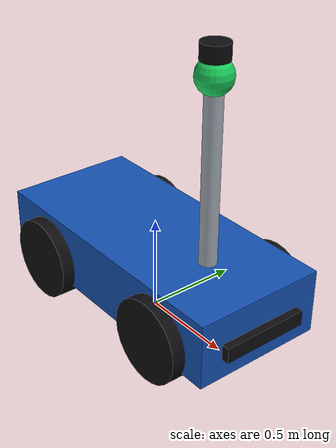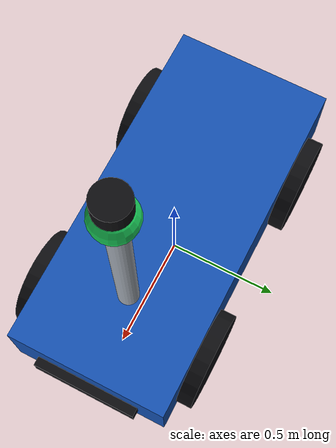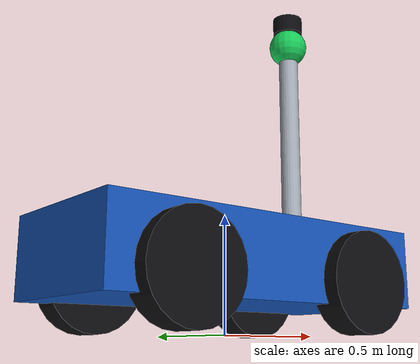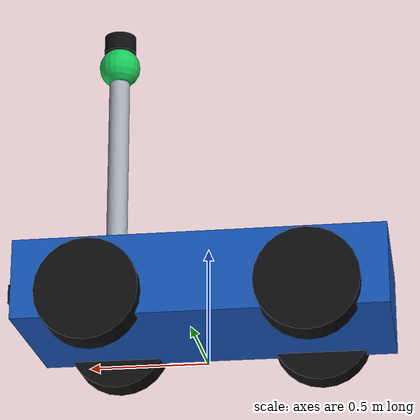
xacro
<?xml version="1.0"?>
<robot xmlns:xacro="http://www.ros.org/wiki/xacro" name="patrol_robot">
  <!-- roboQ-320 dimensions from the vehicle configuration sheet. -->
  <xacro:property name="wheel_radius" value="0.215"/>
  <xacro:property name="wheel_width" value="0.135"/>
  <xacro:property name="wheel_base" value="0.89"/>
  <xacro:property name="track_width" value="0.70"/>
  <xacro:property name="steering_joint_limit" value="${radians(35.0)}"/>
  <!-- Bicycle-model limit atan(wheel_base / minimum_turning_radius). -->
  <xacro:property name="steering_control_limit" value="${atan2(wheel_base, 2.35)}"/>
  <!--
    MID-360 installation in base_footprint coordinates. The measured vehicle
    envelope is 1.53 m long and 0.78 m wide: 0.365 m to the front,
    1.165 m to the rear, and 0.39 m to either side.
  -->
  <xacro:property name="mid360_x" value="0.40"/>
  <xacro:property name="mid360_y" value="0.0"/>
  <xacro:property name="mid360_z" value="1.50"/>

  <material name="body_blue">
    <color rgba="0.08 0.32 0.70 1.0"/>
  </material>
  <material name="dark">
    <color rgba="0.05 0.05 0.06 1.0"/>
  </material>
  <material name="silver">
    <color rgba="0.65 0.68 0.72 1.0"/>
  </material>
  <material name="sensor_green">
    <color rgba="0.10 0.80 0.35 1.0"/>
  </material>

  <link name="base_footprint"/>

  <joint name="base_footprint_joint" type="fixed">
    <parent link="base_footprint"/>
    <child link="base_link"/>
    <origin xyz="0 0 0.29"/>
  </joint>

  <link name="base_link">
    <visual>
      <geometry>
        <box size="1.54 0.70 0.34"/>
      </geometry>
      <material name="body_blue"/>
    </visual>
    <collision>
      <geometry>
        <box size="1.54 0.70 0.34"/>
      </geometry>
    </collision>
    <inertial>
      <!-- 170.4 kg chassis + four 2.3 kg wheels + two 0.2 kg steering
           carriers = 180 kg total vehicle mass. -->
      <mass value="170.4"/>
      <inertia ixx="8.59952" ixy="0.0" ixz="0.0"
               iyy="35.31824" iyz="0.0" izz="40.63472"/>
    </inertial>
  </link>

  <xacro:macro name="wheel_link" params="name">
    <link name="${name}">
      <visual>
        <origin rpy="${pi / 2.0} 0 0"/>
        <geometry>
          <cylinder radius="${wheel_radius}" length="${wheel_width}"/>
        </geometry>
        <material name="dark"/>
      </visual>
      <collision>
        <origin rpy="${pi / 2.0} 0 0"/>
        <geometry>
          <cylinder radius="${wheel_radius}" length="${wheel_width}"/>
        </geometry>
      </collision>
      <inertial>
        <mass value="2.3"/>
        <inertia ixx="0.0272" ixy="0.0" ixz="0.0"
                 iyy="0.0532" iyz="0.0" izz="0.0272"/>
      </inertial>
    </link>
  </xacro:macro>

  <xacro:macro name="rear_wheel" params="side y">
    <xacro:wheel_link name="rear_${side}_wheel_link"/>
    <joint name="rear_${side}_wheel_joint" type="continuous">
      <parent link="base_link"/>
      <child link="rear_${side}_wheel_link"/>
      <origin xyz="${-wheel_base / 2.0} ${y} -0.075"/>
      <axis xyz="0 1 0"/>
      <dynamics damping="0.05" friction="0.02"/>
    </joint>
  </xacro:macro>

  <xacro:macro name="front_wheel" params="side y">
    <link name="front_${side}_steering_link">
      <inertial>
        <mass value="0.2"/>
        <inertia ixx="0.0002" ixy="0.0" ixz="0.0"
                 iyy="0.0002" iyz="0.0" izz="0.0002"/>
      </inertial>
    </link>
    <joint name="front_${side}_steering_joint" type="revolute">
      <parent link="base_link"/>
      <child link="front_${side}_steering_link"/>
      <origin xyz="${wheel_base / 2.0} ${y} -0.075"/>
      <axis xyz="0 0 1"/>
      <limit lower="${-steering_joint_limit}" upper="${steering_joint_limit}"
             effort="500.0" velocity="${radians(25.0)}"/>
      <dynamics damping="2.0" friction="0.2"/>
    </joint>
    <xacro:wheel_link name="front_${side}_wheel_link"/>
    <joint name="front_${side}_wheel_joint" type="continuous">
      <parent link="front_${side}_steering_link"/>
      <child link="front_${side}_wheel_link"/>
      <axis xyz="0 1 0"/>
      <dynamics damping="0.05" friction="0.02"/>
    </joint>
  </xacro:macro>

  <xacro:front_wheel side="left" y="${track_width / 2.0}"/>
  <xacro:front_wheel side="right" y="${-track_width / 2.0}"/>
  <xacro:rear_wheel side="left" y="${track_width / 2.0}"/>
  <xacro:rear_wheel side="right" y="${-track_width / 2.0}"/>

  <link name="front_bumper_link">
    <visual>
      <geometry>
        <box size="0.08 0.46 0.08"/>
      </geometry>
      <material name="dark"/>
    </visual>
    <collision>
      <geometry>
        <box size="0.08 0.46 0.08"/>
      </geometry>
    </collision>
  </link>
  <joint name="front_bumper_joint" type="fixed">
    <parent link="base_link"/>
    <child link="front_bumper_link"/>
    <origin xyz="0.77 0 -0.02"/>
  </joint>

  <link name="mast_link">
    <visual>
      <geometry>
        <cylinder radius="0.045" length="0.93"/>
      </geometry>
      <material name="silver"/>
    </visual>
    <collision>
      <geometry>
        <cylinder radius="0.045" length="0.93"/>
      </geometry>
    </collision>
  </link>
  <joint name="mast_joint" type="fixed">
    <parent link="base_link"/>
    <child link="mast_link"/>
    <origin xyz="${mid360_x} ${mid360_y} 0.635"/>
  </joint>

  <link name="sensor_head_link">
    <visual>
      <geometry>
        <sphere radius="0.09"/>
      </geometry>
      <material name="sensor_green"/>
    </visual>
    <collision>
      <geometry>
        <sphere radius="0.09"/>
      </geometry>
    </collision>
  </link>
  <joint name="sensor_head_joint" type="fixed">
    <parent link="mast_link"/>
    <child link="sensor_head_link"/>
    <origin xyz="0 0 0.465"/>
  </joint>

  <link name="lidar_link">
    <visual>
      <geometry>
        <cylinder radius="0.07" length="0.08"/>
      </geometry>
      <material name="dark"/>
    </visual>
  </link>
  <joint name="lidar_joint" type="fixed">
    <parent link="sensor_head_link"/>
    <child link="lidar_link"/>
    <origin xyz="0 0 0.11"/>
  </joint>

  <xacro:macro name="wheel_friction" params="link">
    <gazebo reference="${link}">
      <mu1>1.0</mu1>
      <mu2>1.0</mu2>
    </gazebo>
  </xacro:macro>
  <xacro:wheel_friction link="front_left_wheel_link"/>
  <xacro:wheel_friction link="front_right_wheel_link"/>
  <xacro:wheel_friction link="rear_left_wheel_link"/>
  <xacro:wheel_friction link="rear_right_wheel_link"/>
  <gazebo reference="lidar_link">
    <sensor name="mid360s" type="gpu_lidar">
      <always_on>true</always_on>
      <update_rate>10</update_rate>
      <visualize>false</visualize>
      <topic>/livox/lidar_scan</topic>
      <!-- Gazebo Sim uses gz_frame_id for the transport message header. -->
      <gz_frame_id>lidar_link</gz_frame_id>
      <lidar>
        <scan>
          <horizontal>
            <samples>900</samples>
            <resolution>1</resolution>
            <min_angle>${-pi}</min_angle>
            <max_angle>${pi}</max_angle>
          </horizontal>
          <vertical>
            <samples>32</samples>
            <resolution>1</resolution>
            <min_angle>-0.122173</min_angle>
            <max_angle>0.907571</max_angle>
          </vertical>
        </scan>
        <range>
          <min>0.10</min>
          <max>70.0</max>
          <resolution>0.02</resolution>
        </range>
      </lidar>
    </sensor>
  </gazebo>

  <gazebo>
    <plugin filename="gz-sim-ackermann-steering-system"
            name="gz::sim::systems::AckermannSteering">
      <!-- The real vehicle has a single motor and rear differential. -->
      <left_joint>rear_left_wheel_joint</left_joint>
      <right_joint>rear_right_wheel_joint</right_joint>
      <left_steering_joint>front_left_steering_joint</left_steering_joint>
      <right_steering_joint>front_right_steering_joint</right_steering_joint>
      <kingpin_width>${track_width}</kingpin_width>
      <wheel_base>${wheel_base}</wheel_base>
      <wheel_separation>${track_width}</wheel_separation>
      <wheel_radius>${wheel_radius}</wheel_radius>
      <steering_limit>${steering_control_limit}</steering_limit>
      <min_velocity>-5.5556</min_velocity>
      <max_velocity>5.5556</max_velocity>
      <min_acceleration>-2.0</min_acceleration>
      <max_acceleration>2.0</max_acceleration>
      <odom_publish_frequency>50</odom_publish_frequency>
      <topic>/cmd_vel</topic>
      <odom_topic>/odom</odom_topic>
      <tf_topic>/tf</tf_topic>
      <frame_id>odom</frame_id>
      <child_frame_id>base_footprint</child_frame_id>
    </plugin>
    <plugin filename="gz-sim-joint-state-publisher-system"
            name="gz::sim::systems::JointStatePublisher">
      <joint_name>front_left_steering_joint</joint_name>
      <joint_name>front_right_steering_joint</joint_name>
      <joint_name>front_left_wheel_joint</joint_name>
      <joint_name>front_right_wheel_joint</joint_name>
      <joint_name>rear_left_wheel_joint</joint_name>
      <joint_name>rear_right_wheel_joint</joint_name>
      <topic>/joint_states</topic>
    </plugin>
  </gazebo>
</robot>
